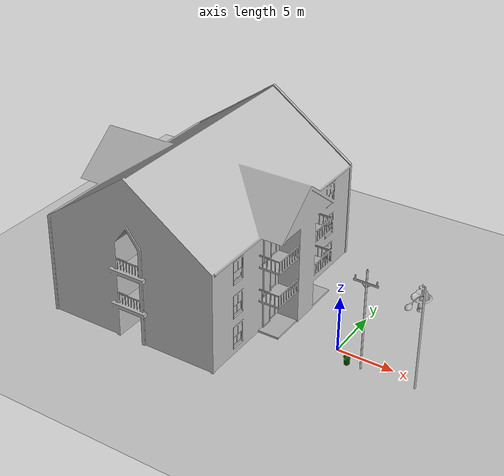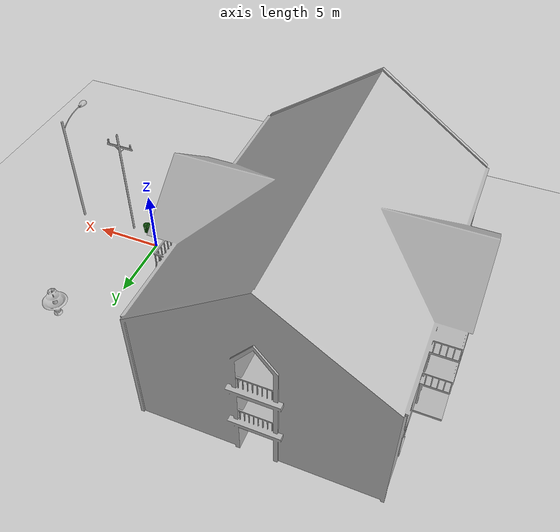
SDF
<sdf version="1.7">
 <world name="default">
  <light name="sun" type="directional">
   <pose>0 0 10 0 -0 0</pose>
   <diffuse>0.8 0.8 0.8 1</diffuse>
   <specular>0.2 0.2 0.2 1</specular>
   <attenuation>
    <range>1000</range>
    <constant>0.9</constant>
    <linear>0.01</linear>
    <quadratic>0.001</quadratic>
   </attenuation>
   <direction>-0.5 0.1 -0.9</direction>
   <spot><inner_angle>0</inner_angle><outer_angle>0</outer_angle><falloff>0</falloff></spot>
  </light>
  <model name="ground_plane">
   <static>1</static>
   <link name="link">
    <collision name="collision">
     <geometry><plane><normal>0 0 1</normal><size>100 100</size></plane></geometry>
     <surface><friction><ode><mu>100</mu><mu2>50</mu2></ode></friction></surface>
    </collision>
    <visual name="visual">
     <cast_shadows>0</cast_shadows>
     <geometry><plane><normal>0 0 1</normal><size>100 100</size></plane></geometry>
     <material>
      <script><uri>file://media/materials/scripts/gazebo.material</uri><name>Gazebo/Grey</name></script>
     </material>
    </visual>
   </link>
  </model>
  <gravity>0 0 -9.8</gravity>
  <magnetic_field>6e-06 2.3e-05 -4.2e-05</magnetic_field>
  <atmosphere type="adiabatic"/>
  <physics type="ode">
   <max_step_size>0.001</max_step_size>
   <real_time_factor>1</real_time_factor>
   <real_time_update_rate>1000</real_time_update_rate>
  </physics>
  <scene><ambient>0.4 0.4 0.4 1</ambient><background>0.7 0.7 0.7 1</background><shadows>1</shadows></scene>
  <audio><device>default</device></audio>
  <spherical_coordinates>
   <surface_model>EARTH_WGS84</surface_model>
   <latitude_deg>0</latitude_deg>
   <longitude_deg>0</longitude_deg>
   <elevation>0</elevation>
   <heading_deg>0</heading_deg>
  </spherical_coordinates>
  <model name="telephone_pole">
   <static>1</static>
   <link name="link">
    <collision name="collision_pole">
     <pose>0 0 4.572 0 -0 0</pose>
     <geometry><cylinder><radius>0.0779475</radius><length>9.144</length></cylinder></geometry>
    </collision>
    <collision name="collision_cross">
     <pose>0 -0.098806 8.04836 0 -0 0</pose>
     <geometry><box><size>2.11606 0.041763 0.177806</size></box></geometry>
    </collision>
    <visual name="visual">
     <geometry><mesh><uri>model://telephone_pole/meshes/telephone_pole.dae</uri></mesh></geometry>
    </visual>
   </link>
   <pose>2.68434 -1.13334 0 0 -0 0</pose>
  </model>
  <model name="first_2015_trash_can">
   <link name="link">
    <inertial>
     <pose>0 0 0.3683 0 -0 0</pose>
     <mass>4.83076</mass>
     <inertia>
      <ixx>0.281534</ixx>
      <ixy>0</ixy>
      <ixz>0</ixz>
      <iyy>0.281534</iyy>
      <iyz>0</iyz>
      <izz>0.126223</izz>
     </inertia>
    </inertial>
    <visual name="visual">
     <geometry><mesh><uri>model://first_2015_trash_can/meshes/trash_can.dae</uri></mesh></geometry>
    </visual>
    <collision name="collision">
     <geometry><mesh><uri>model://first_2015_trash_can/meshes/trash_can.dae</uri></mesh></geometry>
    </collision>
   </link>
   <pose>1.48965 -1.20217 0 0 -0 0</pose>
  </model>
  <model name="apartment">
   <static>1</static>
   <link name="link">
    <collision name="collision">
     <geometry><mesh><uri>model://apartment/meshes/apartment.dae</uri></mesh></geometry>
    </collision>
    <visual name="visual">
     <geometry><mesh><uri>model://apartment/meshes/apartment.dae</uri></mesh></geometry>
    </visual>
   </link>
   <pose>-14.5868 2.74689 0 0 -0 0</pose>
  </model>
  <model name="fountain">
   <static>1</static>
   <link name="link">
    <collision name="collision">
     <geometry><mesh><uri>model://fountain/meshes/fountain.dae</uri></mesh></geometry>
    </collision>
    <visual name="visual">
     <geometry><mesh><uri>model://fountain/meshes/fountain.dae</uri></mesh></geometry>
    </visual>
   </link>
   <pose>3.16135 8.73849 0 0 -0 0</pose>
  </model>
  <model name="Lamp Post">
   <static>1</static>
   <link name="link">
    <collision name="collision">
     <geometry><mesh><uri>model://lamp_post/meshes/lamp_post.dae</uri><scale>3 3 3</scale></mesh></geometry>
    </collision>
    <visual name="visual">
     <geometry><mesh><uri>model://lamp_post/meshes/lamp_post.dae</uri><scale>3 3 3</scale></mesh></geometry>
    </visual>
   </link>
   <pose>7.27836 -1.01812 0 0 -0 0</pose>
  </model>
 </world>
</sdf>
